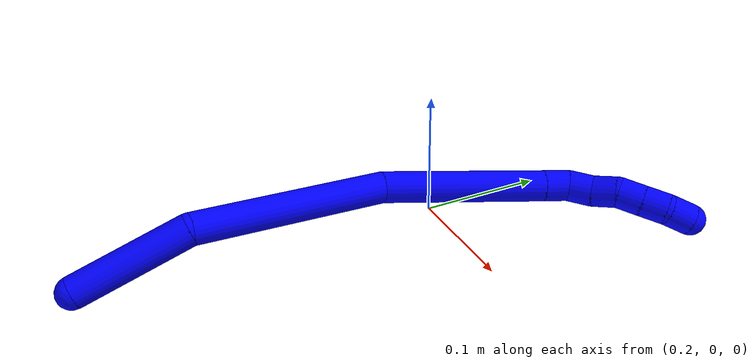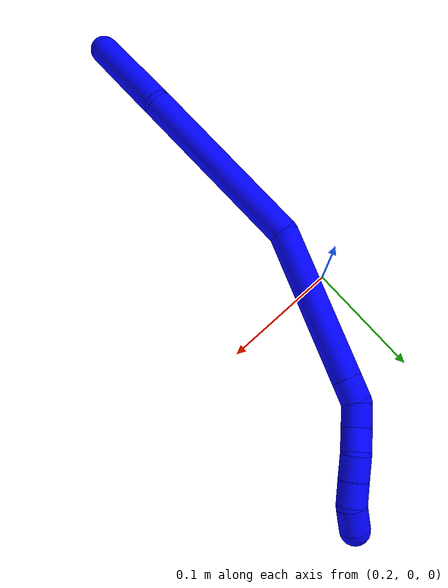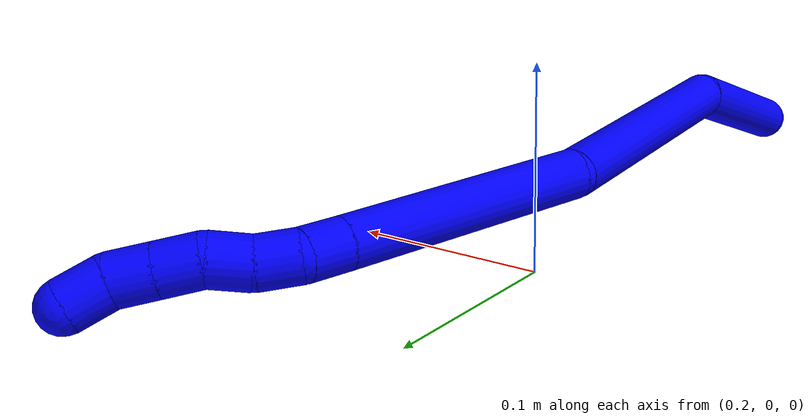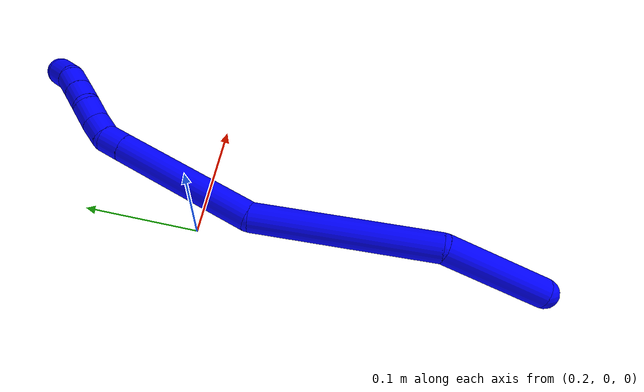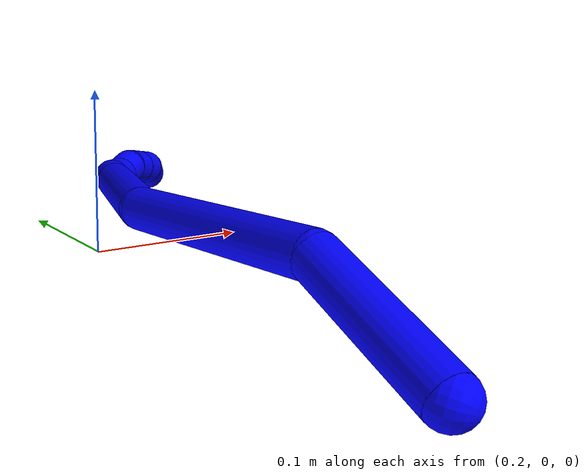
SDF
<sdf version="1.7">
 <world name="default">
  <plugin name="TubeGeneratorPlugin" filename="libtube_generator_plugin.so"/>
  <model name="photoneo_s_sensor">
   <static>1</static>
   <pose>0 0 2 1.57079 1.57079 3.14159</pose>
   <link name="link">
    <inertial><mass>0.1</mass></inertial>
    <sensor name="sensor" type="depth">
     <update_rate>30</update_rate>
     <camera>
      <horizontal_fov>1.22</horizontal_fov>
      <image><width>1920</width><height>1200</height><format>B8G8R8</format></image>
      <clip><near>0.1</near><far>4</far></clip>
      <depth_camera><output>points</output></depth_camera>
     </camera>
     <plugin name="camera_plugin" filename="libgazebo_ros_depth_camera.so">
      <baseline>0.2</baseline>
      <alwaysOn>1</alwaysOn>
      <updateRate>0.0</updateRate>
      <cameraName>camera_ir</cameraName>
      <imageTopicName>/camera/color/image_raw</imageTopicName>
      <cameraInfoTopicName>/camera/color/camera_info</cameraInfoTopicName>
      <depthImageTopicName>/camera/depth/image_raw</depthImageTopicName>
      <depthImageCameraInfoTopicName>/camera/depth/camera_info</depthImageCameraInfoTopicName>
      <pointCloudTopicName>/camera/depth/points</pointCloudTopicName>
      <frameName>fr_optical</frameName>
      <pointCloudCutoff>0.1</pointCloudCutoff>
      <pointCloudCutoffMax>2.0</pointCloudCutoffMax>
      <distortionK1>0</distortionK1>
      <distortionK2>0</distortionK2>
      <distortionK3>0</distortionK3>
      <distortionT1>0</distortionT1>
      <distortionT2>0</distortionT2>
      <CxPrime>0</CxPrime>
      <Cx>0</Cx>
      <Cy>0</Cy>
      <focalLength>0</focalLength>
      <hackBaseline>0</hackBaseline>
     </plugin>
    </sensor>
   </link>
  </model>
  <gravity>0 0 -9.8</gravity>
  <magnetic_field>6e-06 2.3e-05 -4.2e-05</magnetic_field>
  <atmosphere type="adiabatic"/>
  <physics name="default_physics" default="0" type="ode">
   <max_step_size>0.003</max_step_size>
   <real_time_factor>1</real_time_factor>
   <real_time_update_rate>1000</real_time_update_rate>
   <max_contacts>10000</max_contacts>
   <ode>
    <solver>
     <type>quick</type>
     <iters>100</iters>
     <sor>1.3</sor>
     <use_dynamic_moi_rescaling>0</use_dynamic_moi_rescaling>
    </solver>
    <constraints>
     <contact_max_correcting_vel>0</contact_max_correcting_vel>
     <contact_surface_layer>0.001</contact_surface_layer>
     <cfm>0</cfm>
     <erp>0.2</erp>
    </constraints>
   </ode>
  </physics>
  <scene><ambient>0.4 0.4 0.4 1</ambient><background>0.7 0.7 0.7 1</background><shadows>0</shadows></scene>
  <audio><device>default</device></audio>
  <spherical_coordinates>
   <surface_model>EARTH_WGS84</surface_model>
   <latitude_deg>0</latitude_deg>
   <longitude_deg>0</longitude_deg>
   <elevation>0</elevation>
   <heading_deg>0</heading_deg>
  </spherical_coordinates>
  <model name="bin">
   <static>1</static>
   <link name="bottom">
    <collision name="collision-bottom">
     <pose>0 0 -0.01 0 -0 0</pose>
     <geometry><box><size>0.8 0.6 0.02</size></box></geometry>
     <surface>
      <friction><ode><mu>100</mu><mu2>100</mu2></ode></friction>
      <contact><collide_bitmask>65535</collide_bitmask></contact>
     </surface>
    </collision>
   </link>
   <link name="west_wall">
    <collision name="collision-west_wall">
     <pose>-0.41 0 0.1 0 -0 0</pose>
     <geometry><box><size>0.02 0.6 0.2</size></box></geometry>
     <surface>
      <friction><ode><mu>100</mu><mu2>100</mu2></ode></friction>
      <contact><collide_bitmask>65535</collide_bitmask></contact>
     </surface>
    </collision>
   </link>
   <link name="east_wall">
    <collision name="collision-east_wall">
     <pose>0.41 0 0.1 0 -0 0</pose>
     <geometry><box><size>0.02 0.6 0.2</size></box></geometry>
     <surface>
      <friction><ode><mu>100</mu><mu2>100</mu2></ode></friction>
      <contact><collide_bitmask>65535</collide_bitmask></contact>
     </surface>
    </collision>
   </link>
   <link name="south_wall">
    <collision name="collision-south_wall">
     <pose>0 -0.31 0.1 0 -0 0</pose>
     <geometry><box><size>0.8 0.02 0.2</size></box></geometry>
     <surface>
      <friction><ode><mu>100</mu><mu2>100</mu2></ode></friction>
      <contact><collide_bitmask>65535</collide_bitmask></contact>
     </surface>
    </collision>
   </link>
   <link name="north_wall">
    <collision name="collision-north_wall">
     <pose>0 0.31 0.1 0 -0 0</pose>
     <geometry><box><size>0.8 0.02 0.2</size></box></geometry>
     <surface>
      <friction><ode><mu>100</mu><mu2>100</mu2></ode></friction>
      <contact><collide_bitmask>65535</collide_bitmask></contact>
     </surface>
    </collision>
   </link>
  </model>
  <model name="1">
   <static>0</static>
   <link name="1">
    <collision name="collision-cylinder-e_1_1_4">
     <pose>0.027419 0.004867 0.036996 -0.130812 0.633709 -0.042948</pose>
     <geometry><cylinder><radius>0.0125</radius><length>0.092612</length></cylinder></geometry>
     <surface>
      <friction><ode><mu>1.16</mu><mu2>1.16</mu2><slip1>0</slip1><slip2>0</slip2></ode></friction>
      <contact><ode><kp>1e+06</kp><kd>1</kd><max_vel>0</max_vel><min_depth>0.001</min_depth></ode></contact>
     </surface>
    </collision>
    <visual name="visual-cylinder-e_1_1_4">
     <pose>0.027419 0.004867 0.036996 -0.130812 0.633709 -0.042948</pose>
     <geometry><cylinder><radius>0.0125</radius><length>0.092612</length></cylinder></geometry>
     <material><ambient>0 0 1 1</ambient></material>
    </visual>
    <collision name="collision-cylinder-e_2_4_5">
     <pose>0.083959 0.044706 0.137097 -0.506045 0.383629 -0.100343</pose>
     <geometry><cylinder><radius>0.0125</radius><length>0.155604</length></cylinder></geometry>
     <surface>
      <friction><ode><mu>1.16</mu><mu2>1.16</mu2><slip1>0</slip1><slip2>0</slip2></ode></friction>
      <contact><ode><kp>1e+06</kp><kd>1</kd><max_vel>0</max_vel><min_depth>0.001</min_depth></ode></contact>
     </surface>
    </collision>
    <visual name="visual-cylinder-e_2_4_5">
     <pose>0.083959 0.044706 0.137097 -0.506045 0.383629 -0.100343</pose>
     <geometry><cylinder><radius>0.0125</radius><length>0.155604</length></cylinder></geometry>
     <material><ambient>0 0 1 1</ambient></material>
    </visual>
    <collision name="collision-cylinder-e_3_5_6">
     <pose>0.154271 0.114183 0.237159 -0.751106 0.683611 -0.278717</pose>
     <geometry><cylinder><radius>0.0125</radius><length>0.130435</length></cylinder></geometry>
     <surface>
      <friction><ode><mu>1.16</mu><mu2>1.16</mu2><slip1>0</slip1><slip2>0</slip2></ode></friction>
      <contact><ode><kp>1e+06</kp><kd>1</kd><max_vel>0</max_vel><min_depth>0.001</min_depth></ode></contact>
     </surface>
    </collision>
    <visual name="visual-cylinder-e_3_5_6">
     <pose>0.154271 0.114183 0.237159 -0.751106 0.683611 -0.278717</pose>
     <geometry><cylinder><radius>0.0125</radius><length>0.130435</length></cylinder></geometry>
     <material><ambient>0 0 1 1</ambient></material>
    </visual>
    <collision name="collision-cylinder-e_4_6_7">
     <pose>0.201925 0.153953 0.279863 -0.741647 0.692507 -0.278738</pose>
     <geometry><cylinder><radius>0.0125</radius><length>0.020248</length></cylinder></geometry>
     <surface>
      <friction><ode><mu>1.16</mu><mu2>1.16</mu2><slip1>0</slip1><slip2>0</slip2></ode></friction>
      <contact><ode><kp>1e+06</kp><kd>1</kd><max_vel>0</max_vel><min_depth>0.001</min_depth></ode></contact>
     </surface>
    </collision>
    <visual name="visual-cylinder-e_4_6_7">
     <pose>0.201925 0.153953 0.279863 -0.741647 0.692507 -0.278738</pose>
     <geometry><cylinder><radius>0.0125</radius><length>0.020248</length></cylinder></geometry>
     <material><ambient>0 0 1 1</ambient></material>
    </visual>
    <collision name="collision-cylinder-e_5_7_8">
     <pose>0.21663 0.164889 0.287538 -1.24287 0.942088 -0.699393</pose>
     <geometry><cylinder><radius>0.0125</radius><length>0.020377</length></cylinder></geometry>
     <surface>
      <friction><ode><mu>1.16</mu><mu2>1.16</mu2><slip1>0</slip1><slip2>0</slip2></ode></friction>
      <contact><ode><kp>1e+06</kp><kd>1</kd><max_vel>0</max_vel><min_depth>0.001</min_depth></ode></contact>
     </surface>
    </collision>
    <visual name="visual-cylinder-e_5_7_8">
     <pose>0.21663 0.164889 0.287538 -1.24287 0.942088 -0.699393</pose>
     <geometry><cylinder><radius>0.0125</radius><length>0.020377</length></cylinder></geometry>
     <material><ambient>0 0 1 1</ambient></material>
    </visual>
    <collision name="collision-cylinder-e_6_8_9">
     <pose>0.234207 0.173988 0.291416 -1.05381 1.17138 -0.736587</pose>
     <geometry><cylinder><radius>0.0125</radius><length>0.020271</length></cylinder></geometry>
     <surface>
      <friction><ode><mu>1.16</mu><mu2>1.16</mu2><slip1>0</slip1><slip2>0</slip2></ode></friction>
      <contact><ode><kp>1e+06</kp><kd>1</kd><max_vel>0</max_vel><min_depth>0.001</min_depth></ode></contact>
     </surface>
    </collision>
    <visual name="visual-cylinder-e_6_8_9">
     <pose>0.234207 0.173988 0.291416 -1.05381 1.17138 -0.736587</pose>
     <geometry><cylinder><radius>0.0125</radius><length>0.020271</length></cylinder></geometry>
     <material><ambient>0 0 1 1</ambient></material>
    </visual>
    <collision name="collision-cylinder-e_7_9_10">
     <pose>0.251295 0.183696 0.294367 -1.41242 0.883462 -0.766802</pose>
     <geometry><cylinder><radius>0.0125</radius><length>0.020052</length></cylinder></geometry>
     <surface>
      <friction><ode><mu>1.16</mu><mu2>1.16</mu2><slip1>0</slip1><slip2>0</slip2></ode></friction>
      <contact><ode><kp>1e+06</kp><kd>1</kd><max_vel>0</max_vel><min_depth>0.001</min_depth></ode></contact>
     </surface>
    </collision>
    <visual name="visual-cylinder-e_7_9_10">
     <pose>0.251295 0.183696 0.294367 -1.41242 0.883462 -0.766802</pose>
     <geometry><cylinder><radius>0.0125</radius><length>0.020052</length></cylinder></geometry>
     <material><ambient>0 0 1 1</ambient></material>
    </visual>
    <collision name="collision-cylinder-e_8_10_11">
     <pose>0.266814 0.196223 0.296483 -1.39452 0.886171 -0.756688</pose>
     <geometry><cylinder><radius>0.0125</radius><length>0.020061</length></cylinder></geometry>
     <surface>
      <friction><ode><mu>1.16</mu><mu2>1.16</mu2><slip1>0</slip1><slip2>0</slip2></ode></friction>
      <contact><ode><kp>1e+06</kp><kd>1</kd><max_vel>0</max_vel><min_depth>0.001</min_depth></ode></contact>
     </surface>
    </collision>
    <visual name="visual-cylinder-e_8_10_11">
     <pose>0.266814 0.196223 0.296483 -1.39452 0.886171 -0.756688</pose>
     <geometry><cylinder><radius>0.0125</radius><length>0.020061</length></cylinder></geometry>
     <material><ambient>0 0 1 1</ambient></material>
    </visual>
    <collision name="collision-cylinder-e_9_11_2">
     <pose>0.280049 0.2106 0.300324 -1.24704 0.567217 -0.413282</pose>
     <geometry><cylinder><radius>0.0125</radius><length>0.020341</length></cylinder></geometry>
     <surface>
      <friction><ode><mu>1.16</mu><mu2>1.16</mu2><slip1>0</slip1><slip2>0</slip2></ode></friction>
      <contact><ode><kp>1e+06</kp><kd>1</kd><max_vel>0</max_vel><min_depth>0.001</min_depth></ode></contact>
     </surface>
    </collision>
    <visual name="visual-cylinder-e_9_11_2">
     <pose>0.280049 0.2106 0.300324 -1.24704 0.567217 -0.413282</pose>
     <geometry><cylinder><radius>0.0125</radius><length>0.020341</length></cylinder></geometry>
     <material><ambient>0 0 1 1</ambient></material>
    </visual>
    <collision name="collision-sphere-2">
     <pose>0.285514 0.218732 0.303053 0 -0 0</pose>
     <geometry><sphere><radius>0.0125</radius></sphere></geometry>
     <surface>
      <friction><ode><mu>1.16</mu><mu2>1.16</mu2><slip1>0</slip1><slip2>0</slip2></ode></friction>
      <contact><ode><kp>1e+06</kp><kd>1</kd><max_vel>0</max_vel><min_depth>0.001</min_depth></ode></contact>
     </surface>
    </collision>
    <visual name="visual-sphere-2">
     <pose>0.285514 0.218732 0.303053 0 -0 0</pose>
     <geometry><sphere><radius>0.0125</radius></sphere></geometry>
     <material><ambient>0 0 1 1</ambient></material>
    </visual>
    <collision name="collision-sphere-11">
     <pose>0.274584 0.202467 0.297595 0 -0 0</pose>
     <geometry><sphere><radius>0.0125</radius></sphere></geometry>
     <surface>
      <friction><ode><mu>1.16</mu><mu2>1.16</mu2><slip1>0</slip1><slip2>0</slip2></ode></friction>
      <contact><ode><kp>1e+06</kp><kd>1</kd><max_vel>0</max_vel><min_depth>0.001</min_depth></ode></contact>
     </surface>
    </collision>
    <visual name="visual-sphere-11">
     <pose>0.274584 0.202467 0.297595 0 -0 0</pose>
     <geometry><sphere><radius>0.0125</radius></sphere></geometry>
     <material><ambient>0 0 1 1</ambient></material>
    </visual>
    <collision name="collision-sphere-10">
     <pose>0.259044 0.189978 0.295371 0 -0 0</pose>
     <geometry><sphere><radius>0.0125</radius></sphere></geometry>
     <surface>
      <friction><ode><mu>1.16</mu><mu2>1.16</mu2><slip1>0</slip1><slip2>0</slip2></ode></friction>
      <contact><ode><kp>1e+06</kp><kd>1</kd><max_vel>0</max_vel><min_depth>0.001</min_depth></ode></contact>
     </surface>
    </collision>
    <visual name="visual-sphere-10">
     <pose>0.259044 0.189978 0.295371 0 -0 0</pose>
     <geometry><sphere><radius>0.0125</radius></sphere></geometry>
     <material><ambient>0 0 1 1</ambient></material>
    </visual>
    <collision name="collision-sphere-9">
     <pose>0.243545 0.177414 0.293364 0 -0 0</pose>
     <geometry><sphere><radius>0.0125</radius></sphere></geometry>
     <surface>
      <friction><ode><mu>1.16</mu><mu2>1.16</mu2><slip1>0</slip1><slip2>0</slip2></ode></friction>
      <contact><ode><kp>1e+06</kp><kd>1</kd><max_vel>0</max_vel><min_depth>0.001</min_depth></ode></contact>
     </surface>
    </collision>
    <visual name="visual-sphere-9">
     <pose>0.243545 0.177414 0.293364 0 -0 0</pose>
     <geometry><sphere><radius>0.0125</radius></sphere></geometry>
     <material><ambient>0 0 1 1</ambient></material>
    </visual>
    <collision name="collision-sphere-4">
     <pose>0.054839 0.009735 0.073992 0 -0 0</pose>
     <geometry><sphere><radius>0.0125</radius></sphere></geometry>
     <surface>
      <friction><ode><mu>1.16</mu><mu2>1.16</mu2><slip1>0</slip1><slip2>0</slip2></ode></friction>
      <contact><ode><kp>1e+06</kp><kd>1</kd><max_vel>0</max_vel><min_depth>0.001</min_depth></ode></contact>
     </surface>
    </collision>
    <visual name="visual-sphere-4">
     <pose>0.054839 0.009735 0.073992 0 -0 0</pose>
     <geometry><sphere><radius>0.0125</radius></sphere></geometry>
     <material><ambient>0 0 1 1</ambient></material>
    </visual>
    <collision name="collision-sphere-1">
     <geometry><sphere><radius>0.0125</radius></sphere></geometry>
     <surface>
      <friction><ode><mu>1.16</mu><mu2>1.16</mu2><slip1>0</slip1><slip2>0</slip2></ode></friction>
      <contact><ode><kp>1e+06</kp><kd>1</kd><max_vel>0</max_vel><min_depth>0.001</min_depth></ode></contact>
     </surface>
    </collision>
    <visual name="visual-sphere-1">
     <geometry><sphere><radius>0.0125</radius></sphere></geometry>
     <material><ambient>0 0 1 1</ambient></material>
    </visual>
    <collision name="collision-sphere-8">
     <pose>0.22487 0.170562 0.289468 0 -0 0</pose>
     <geometry><sphere><radius>0.0125</radius></sphere></geometry>
     <surface>
      <friction><ode><mu>1.16</mu><mu2>1.16</mu2><slip1>0</slip1><slip2>0</slip2></ode></friction>
      <contact><ode><kp>1e+06</kp><kd>1</kd><max_vel>0</max_vel><min_depth>0.001</min_depth></ode></contact>
     </surface>
    </collision>
    <visual name="visual-sphere-8">
     <pose>0.22487 0.170562 0.289468 0 -0 0</pose>
     <geometry><sphere><radius>0.0125</radius></sphere></geometry>
     <material><ambient>0 0 1 1</ambient></material>
    </visual>
    <collision name="collision-sphere-5">
     <pose>0.11308 0.079677 0.200201 0 -0 0</pose>
     <geometry><sphere><radius>0.0125</radius></sphere></geometry>
     <surface>
      <friction><ode><mu>1.16</mu><mu2>1.16</mu2><slip1>0</slip1><slip2>0</slip2></ode></friction>
      <contact><ode><kp>1e+06</kp><kd>1</kd><max_vel>0</max_vel><min_depth>0.001</min_depth></ode></contact>
     </surface>
    </collision>
    <visual name="visual-sphere-5">
     <pose>0.11308 0.079677 0.200201 0 -0 0</pose>
     <geometry><sphere><radius>0.0125</radius></sphere></geometry>
     <material><ambient>0 0 1 1</ambient></material>
    </visual>
    <collision name="collision-sphere-6">
     <pose>0.195462 0.14869 0.274117 0 -0 0</pose>
     <geometry><sphere><radius>0.0125</radius></sphere></geometry>
     <surface>
      <friction><ode><mu>1.16</mu><mu2>1.16</mu2><slip1>0</slip1><slip2>0</slip2></ode></friction>
      <contact><ode><kp>1e+06</kp><kd>1</kd><max_vel>0</max_vel><min_depth>0.001</min_depth></ode></contact>
     </surface>
    </collision>
    <visual name="visual-sphere-6">
     <pose>0.195462 0.14869 0.274117 0 -0 0</pose>
     <geometry><sphere><radius>0.0125</radius></sphere></geometry>
     <material><ambient>0 0 1 1</ambient></material>
    </visual>
    <collision name="collision-sphere-7">
     <pose>0.208389 0.159216 0.285608 0 -0 0</pose>
     <geometry><sphere><radius>0.0125</radius></sphere></geometry>
     <surface>
      <friction><ode><mu>1.16</mu><mu2>1.16</mu2><slip1>0</slip1><slip2>0</slip2></ode></friction>
      <contact><ode><kp>1e+06</kp><kd>1</kd><max_vel>0</max_vel><min_depth>0.001</min_depth></ode></contact>
     </surface>
    </collision>
    <visual name="visual-sphere-7">
     <pose>0.208389 0.159216 0.285608 0 -0 0</pose>
     <geometry><sphere><radius>0.0125</radius></sphere></geometry>
     <material><ambient>0 0 1 1</ambient></material>
    </visual>
    <inertial>
     <pose>0.130129 0.088417 0.18217 0 -0 0</pose>
     <mass>0.5</mass>
     <inertia>
      <ixx>0.000444</ixx>
      <ixy>0</ixy>
      <ixz>0</ixz>
      <iyy>0.000457</iyy>
      <iyz>0</iyz>
      <izz>-0.000521</izz>
     </inertia>
    </inertial>
   </link>
   <pose>0.203645 -0.287854 0.012456 -1.32794 -0.454003 0.481518</pose>
  </model>
 </world>
</sdf>
